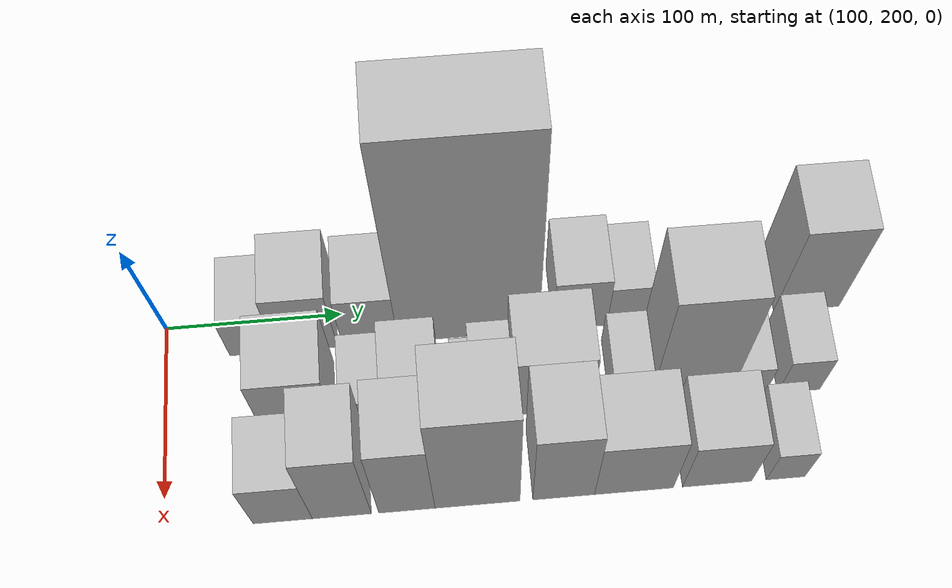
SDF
<sdf version="1.6">
 <world name="default">
  <model name="building_27">
   <static>1</static>
   <pose>100.0000 249.0915 0 0.000000 0.000000 0.000000</pose>
   <link name="link">
    <pose>0 0 22.50 0 0 0</pose>
    <collision name="collision"><geometry><box><size>40.0000 26.0770 45.0000</size></box></geometry></collision>
    <visual name="visual">
     <cast_shadows>0</cast_shadows>
     <geometry><box><size>40.0000 26.0770 45.0000</size></box></geometry>
     <material>
      <script>
       <uri>model://HANNAS_wall/materials/scripts</uri>
       <uri>model://HANNAS_wall/materials/textures</uri>
       <name>vrc/HANNAS_wall</name>
      </script>
     </material>
    </visual>
   </link>
  </model>
  <model name="building_28">
   <static>1</static>
   <pose>100.0000 279.5010 0 0.000000 0.000000 0.000000</pose>
   <link name="link">
    <pose>0 0 34.50 0 0 0</pose>
    <collision name="collision"><geometry><box><size>40.0000 34.7419 69.0000</size></box></geometry></collision>
    <visual name="visual">
     <cast_shadows>0</cast_shadows>
     <geometry><box><size>40.0000 34.7419 69.0000</size></box></geometry>
     <material>
      <script>
       <uri>model://HANNAS_wall/materials/scripts</uri>
       <uri>model://HANNAS_wall/materials/textures</uri>
       <name>vrc/HANNAS_wall</name>
      </script>
     </material>
    </visual>
   </link>
  </model>
  <model name="building_29">
   <static>1</static>
   <pose>100.0000 315.5436 0 0.000000 0.000000 0.000000</pose>
   <link name="link">
    <pose>0 0 30.00 0 0 0</pose>
    <collision name="collision"><geometry><box><size>40.0000 31.3432 60.0000</size></box></geometry></collision>
    <visual name="visual">
     <cast_shadows>0</cast_shadows>
     <geometry><box><size>40.0000 31.3432 60.0000</size></box></geometry>
     <material>
      <script>
       <uri>model://HANNAS_wall/materials/scripts</uri>
       <uri>model://HANNAS_wall/materials/textures</uri>
       <name>vrc/HANNAS_wall</name>
      </script>
     </material>
    </visual>
   </link>
  </model>
  <model name="building_30">
   <static>1</static>
   <pose>100.0000 371.1281 0 0.000000 0.000000 0.000000</pose>
   <link name="link">
    <pose>0 0 111.00 0 0 0</pose>
    <collision name="collision"><geometry><box><size>40.0000 79.8259 222.0000</size></box></geometry></collision>
    <visual name="visual">
     <cast_shadows>0</cast_shadows>
     <geometry><box><size>40.0000 79.8259 222.0000</size></box></geometry>
     <material>
      <script>
       <uri>model://HANNAS_wall/materials/scripts</uri>
       <uri>model://HANNAS_wall/materials/textures</uri>
       <name>vrc/HANNAS_wall</name>
      </script>
     </material>
    </visual>
   </link>
  </model>
  <model name="building_31">
   <static>1</static>
   <pose>100.0000 434.5013 0 0.000000 0.000000 0.000000</pose>
   <link name="link">
    <pose>0 0 30.00 0 0 0</pose>
    <collision name="collision"><geometry><box><size>40.0000 30.9204 60.0000</size></box></geometry></collision>
    <visual name="visual">
     <cast_shadows>0</cast_shadows>
     <geometry><box><size>40.0000 30.9204 60.0000</size></box></geometry>
     <material>
      <script>
       <uri>model://HANNAS_wall/materials/scripts</uri>
       <uri>model://HANNAS_wall/materials/textures</uri>
       <name>vrc/HANNAS_wall</name>
      </script>
     </material>
    </visual>
   </link>
  </model>
  <model name="building_32">
   <static>1</static>
   <pose>100.0000 462.0291 0 0.000000 0.000000 0.000000</pose>
   <link name="link">
    <pose>0 0 24.00 0 0 0</pose>
    <collision name="collision"><geometry><box><size>40.0000 24.1351 48.0000</size></box></geometry></collision>
    <visual name="visual">
     <cast_shadows>0</cast_shadows>
     <geometry><box><size>40.0000 24.1351 48.0000</size></box></geometry>
     <material>
      <script>
       <uri>model://HANNAS_wall/materials/scripts</uri>
       <uri>model://HANNAS_wall/materials/textures</uri>
       <name>vrc/HANNAS_wall</name>
      </script>
     </material>
    </visual>
   </link>
  </model>
  <model name="building_33">
   <static>1</static>
   <pose>100.0000 564.8013 0 0.000000 0.000000 0.000000</pose>
   <link name="link">
    <pose>0 0 49.50 0 0 0</pose>
    <collision name="collision"><geometry><box><size>40.0000 37.8031 99.0000</size></box></geometry></collision>
    <visual name="visual">
     <cast_shadows>0</cast_shadows>
     <geometry><box><size>40.0000 37.8031 99.0000</size></box></geometry>
     <material>
      <script>
       <uri>model://HANNAS_wall/materials/scripts</uri>
       <uri>model://HANNAS_wall/materials/textures</uri>
       <name>vrc/HANNAS_wall</name>
      </script>
     </material>
    </visual>
   </link>
  </model>
  <model name="building_54">
   <static>1</static>
   <pose>149.0000 274.5101 0 0.000000 0.000000 0.000000</pose>
   <link name="link">
    <pose>0 0 37.50 0 0 0</pose>
    <collision name="collision"><geometry><box><size>40.0000 39.3773 75.0000</size></box></geometry></collision>
    <visual name="visual">
     <cast_shadows>0</cast_shadows>
     <geometry><box><size>40.0000 39.3773 75.0000</size></box></geometry>
     <material>
      <script>
       <uri>model://HANNAS_wall/materials/scripts</uri>
       <uri>model://HANNAS_wall/materials/textures</uri>
       <name>vrc/HANNAS_wall</name>
      </script>
     </material>
    </visual>
   </link>
  </model>
  <model name="building_55">
   <static>1</static>
   <pose>149.0000 310.4948 0 0.000000 0.000000 0.000000</pose>
   <link name="link">
    <pose>0 0 19.50 0 0 0</pose>
    <collision name="collision"><geometry><box><size>40.0000 22.5922 39.0000</size></box></geometry></collision>
    <visual name="visual">
     <cast_shadows>0</cast_shadows>
     <geometry><box><size>40.0000 22.5922 39.0000</size></box></geometry>
     <material>
      <script>
       <uri>model://HANNAS_wall/materials/scripts</uri>
       <uri>model://HANNAS_wall/materials/textures</uri>
       <name>vrc/HANNAS_wall</name>
      </script>
     </material>
    </visual>
   </link>
  </model>
  <model name="building_56">
   <static>1</static>
   <pose>149.0000 337.1772 0 0.000000 0.000000 0.000000</pose>
   <link name="link">
    <pose>0 0 27.00 0 0 0</pose>
    <collision name="collision"><geometry><box><size>40.0000 30.7726 54.0000</size></box></geometry></collision>
    <visual name="visual">
     <cast_shadows>0</cast_shadows>
     <geometry><box><size>40.0000 30.7726 54.0000</size></box></geometry>
     <material>
      <script>
       <uri>model://HANNAS_wall/materials/scripts</uri>
       <uri>model://HANNAS_wall/materials/textures</uri>
       <name>vrc/HANNAS_wall</name>
      </script>
     </material>
    </visual>
   </link>
  </model>
  <model name="building_57">
   <static>1</static>
   <pose>149.0000 364.6392 0 0.000000 0.000000 0.000000</pose>
   <link name="link">
    <pose>0 0 10.50 0 0 0</pose>
    <collision name="collision"><geometry><box><size>40.0000 10.1513 21.0000</size></box></geometry></collision>
    <visual name="visual">
     <cast_shadows>0</cast_shadows>
     <geometry><box><size>40.0000 10.1513 21.0000</size></box></geometry>
     <material>
      <script>
       <uri>model://HANNAS_wall/materials/scripts</uri>
       <uri>model://HANNAS_wall/materials/textures</uri>
       <name>vrc/HANNAS_wall</name>
      </script>
     </material>
    </visual>
   </link>
  </model>
  <model name="building_58">
   <static>1</static>
   <pose>149.0000 381.1021 0 0.000000 0.000000 0.000000</pose>
   <link name="link">
    <pose>0 0 21.00 0 0 0</pose>
    <collision name="collision"><geometry><box><size>40.0000 22.7745 42.0000</size></box></geometry></collision>
    <visual name="visual">
     <cast_shadows>0</cast_shadows>
     <geometry><box><size>40.0000 22.7745 42.0000</size></box></geometry>
     <material>
      <script>
       <uri>model://HANNAS_wall/materials/scripts</uri>
       <uri>model://HANNAS_wall/materials/textures</uri>
       <name>vrc/HANNAS_wall</name>
      </script>
     </material>
    </visual>
   </link>
  </model>
  <model name="building_59">
   <static>1</static>
   <pose>149.0000 414.0976 0 0.000000 0.000000 0.000000</pose>
   <link name="link">
    <pose>0 0 37.50 0 0 0</pose>
    <collision name="collision"><geometry><box><size>40.0000 43.2164 75.0000</size></box></geometry></collision>
    <visual name="visual">
     <cast_shadows>0</cast_shadows>
     <geometry><box><size>40.0000 43.2164 75.0000</size></box></geometry>
     <material>
      <script>
       <uri>model://HANNAS_wall/materials/scripts</uri>
       <uri>model://HANNAS_wall/materials/textures</uri>
       <name>vrc/HANNAS_wall</name>
      </script>
     </material>
    </visual>
   </link>
  </model>
  <model name="building_60">
   <static>1</static>
   <pose>149.0000 456.7561 0 0.000000 0.000000 0.000000</pose>
   <link name="link">
    <pose>0 0 19.50 0 0 0</pose>
    <collision name="collision"><geometry><box><size>40.0000 22.1008 39.0000</size></box></geometry></collision>
    <visual name="visual">
     <cast_shadows>0</cast_shadows>
     <geometry><box><size>40.0000 22.1008 39.0000</size></box></geometry>
     <material>
      <script>
       <uri>model://HANNAS_wall/materials/scripts</uri>
       <uri>model://HANNAS_wall/materials/textures</uri>
       <name>vrc/HANNAS_wall</name>
      </script>
     </material>
    </visual>
   </link>
  </model>
  <model name="building_61">
   <static>1</static>
   <pose>149.0000 490.1723 0 0.000000 0.000000 0.000000</pose>
   <link name="link">
    <pose>0 0 69.00 0 0 0</pose>
    <collision name="collision"><geometry><box><size>40.0000 44.7317 138.0000</size></box></geometry></collision>
    <visual name="visual">
     <cast_shadows>0</cast_shadows>
     <geometry><box><size>40.0000 44.7317 138.0000</size></box></geometry>
     <material>
      <script>
       <uri>model://HANNAS_wall/materials/scripts</uri>
       <uri>model://HANNAS_wall/materials/textures</uri>
       <name>vrc/HANNAS_wall</name>
      </script>
     </material>
    </visual>
   </link>
  </model>
  <model name="building_62">
   <static>1</static>
   <pose>149.0000 522.7117 0 0.000000 0.000000 0.000000</pose>
   <link name="link">
    <pose>0 0 19.50 0 0 0</pose>
    <collision name="collision"><geometry><box><size>40.0000 20.3472 39.0000</size></box></geometry></collision>
    <visual name="visual">
     <cast_shadows>0</cast_shadows>
     <geometry><box><size>40.0000 20.3472 39.0000</size></box></geometry>
     <material>
      <script>
       <uri>model://HANNAS_wall/materials/scripts</uri>
       <uri>model://HANNAS_wall/materials/textures</uri>
       <name>vrc/HANNAS_wall</name>
      </script>
     </material>
    </visual>
   </link>
  </model>
  <model name="building_63">
   <static>1</static>
   <pose>149.0000 551.7992 0 0.000000 0.000000 0.000000</pose>
   <link name="link">
    <pose>0 0 22.50 0 0 0</pose>
    <collision name="collision"><geometry><box><size>40.0000 23.8276 45.0000</size></box></geometry></collision>
    <visual name="visual">
     <cast_shadows>0</cast_shadows>
     <geometry><box><size>40.0000 23.8276 45.0000</size></box></geometry>
     <material>
      <script>
       <uri>model://HANNAS_wall/materials/scripts</uri>
       <uri>model://HANNAS_wall/materials/textures</uri>
       <name>vrc/HANNAS_wall</name>
      </script>
     </material>
    </visual>
   </link>
  </model>
  <model name="building_90">
   <static>1</static>
   <pose>198.0000 263.4361 0 0.000000 0.000000 0.000000</pose>
   <link name="link">
    <pose>0 0 30.00 0 0 0</pose>
    <collision name="collision"><geometry><box><size>40.0000 31.6918 60.0000</size></box></geometry></collision>
    <visual name="visual">
     <cast_shadows>0</cast_shadows>
     <geometry><box><size>40.0000 31.6918 60.0000</size></box></geometry>
     <material>
      <script>
       <uri>model://HANNAS_wall/materials/scripts</uri>
       <uri>model://HANNAS_wall/materials/textures</uri>
       <name>vrc/HANNAS_wall</name>
      </script>
     </material>
    </visual>
   </link>
  </model>
  <model name="building_91">
   <static>1</static>
   <pose>198.0000 295.1300 0 0.000000 0.000000 0.000000</pose>
   <link name="link">
    <pose>0 0 48.00 0 0 0</pose>
    <collision name="collision"><geometry><box><size>40.0000 31.6961 96.0000</size></box></geometry></collision>
    <visual name="visual">
     <cast_shadows>0</cast_shadows>
     <geometry><box><size>40.0000 31.6961 96.0000</size></box></geometry>
     <material>
      <script>
       <uri>model://HANNAS_wall/materials/scripts</uri>
       <uri>model://HANNAS_wall/materials/textures</uri>
       <name>vrc/HANNAS_wall</name>
      </script>
     </material>
    </visual>
   </link>
  </model>
  <model name="building_92">
   <static>1</static>
   <pose>198.0000 330.1177 0 0.000000 0.000000 0.000000</pose>
   <link name="link">
    <pose>0 0 49.50 0 0 0</pose>
    <collision name="collision"><geometry><box><size>40.0000 30.2793 99.0000</size></box></geometry></collision>
    <visual name="visual">
     <cast_shadows>0</cast_shadows>
     <geometry><box><size>40.0000 30.2793 99.0000</size></box></geometry>
     <material>
      <script>
       <uri>model://HANNAS_wall/materials/scripts</uri>
       <uri>model://HANNAS_wall/materials/textures</uri>
       <name>vrc/HANNAS_wall</name>
      </script>
     </material>
    </visual>
   </link>
  </model>
  <model name="building_93">
   <static>1</static>
   <pose>198.0000 368.2131 0 0.000000 0.000000 0.000000</pose>
   <link name="link">
    <pose>0 0 69.00 0 0 0</pose>
    <collision name="collision"><geometry><box><size>40.0000 45.9114 138.0000</size></box></geometry></collision>
    <visual name="visual">
     <cast_shadows>0</cast_shadows>
     <geometry><box><size>40.0000 45.9114 138.0000</size></box></geometry>
     <material>
      <script>
       <uri>model://HANNAS_wall/materials/scripts</uri>
       <uri>model://HANNAS_wall/materials/textures</uri>
       <name>vrc/HANNAS_wall</name>
      </script>
     </material>
    </visual>
   </link>
  </model>
  <model name="building_94">
   <static>1</static>
   <pose>198.0000 414.9088 0 0.000000 0.000000 0.000000</pose>
   <link name="link">
    <pose>0 0 49.50 0 0 0</pose>
    <collision name="collision"><geometry><box><size>40.0000 33.4800 99.0000</size></box></geometry></collision>
    <visual name="visual">
     <cast_shadows>0</cast_shadows>
     <geometry><box><size>40.0000 33.4800 99.0000</size></box></geometry>
     <material>
      <script>
       <uri>model://HANNAS_wall/materials/scripts</uri>
       <uri>model://HANNAS_wall/materials/textures</uri>
       <name>vrc/HANNAS_wall</name>
      </script>
     </material>
    </visual>
   </link>
  </model>
  <model name="building_95">
   <static>1</static>
   <pose>198.0000 453.1274 0 0.000000 0.000000 0.000000</pose>
   <link name="link">
    <pose>0 0 39.00 0 0 0</pose>
    <collision name="collision"><geometry><box><size>40.0000 42.9572 78.0000</size></box></geometry></collision>
    <visual name="visual">
     <cast_shadows>0</cast_shadows>
     <geometry><box><size>40.0000 42.9572 78.0000</size></box></geometry>
     <material>
      <script>
       <uri>model://HANNAS_wall/materials/scripts</uri>
       <uri>model://HANNAS_wall/materials/textures</uri>
       <name>vrc/HANNAS_wall</name>
      </script>
     </material>
    </visual>
   </link>
  </model>
  <model name="building_96">
   <static>1</static>
   <pose>198.0000 498.5312 0 0.000000 0.000000 0.000000</pose>
   <link name="link">
    <pose>0 0 33.00 0 0 0</pose>
    <collision name="collision"><geometry><box><size>40.0000 37.8505 66.0000</size></box></geometry></collision>
    <visual name="visual">
     <cast_shadows>0</cast_shadows>
     <geometry><box><size>40.0000 37.8505 66.0000</size></box></geometry>
     <material>
      <script>
       <uri>model://HANNAS_wall/materials/scripts</uri>
       <uri>model://HANNAS_wall/materials/textures</uri>
       <name>vrc/HANNAS_wall</name>
      </script>
     </material>
    </visual>
   </link>
  </model>
  <model name="building_97">
   <static>1</static>
   <pose>198.0000 536.1050 0 0.000000 0.000000 0.000000</pose>
   <link name="link">
    <pose>0 0 21.00 0 0 0</pose>
    <collision name="collision"><geometry><box><size>40.0000 21.2970 42.0000</size></box></geometry></collision>
    <visual name="visual">
     <cast_shadows>0</cast_shadows>
     <geometry><box><size>40.0000 21.2970 42.0000</size></box></geometry>
     <material>
      <script>
       <uri>model://HANNAS_wall/materials/scripts</uri>
       <uri>model://HANNAS_wall/materials/textures</uri>
       <name>vrc/HANNAS_wall</name>
      </script>
     </material>
    </visual>
   </link>
  </model>
 </world>
</sdf>
